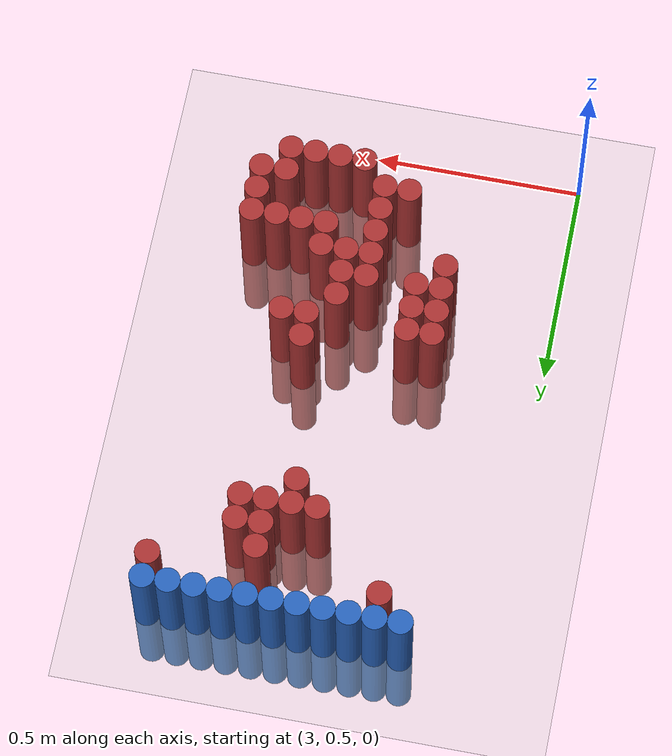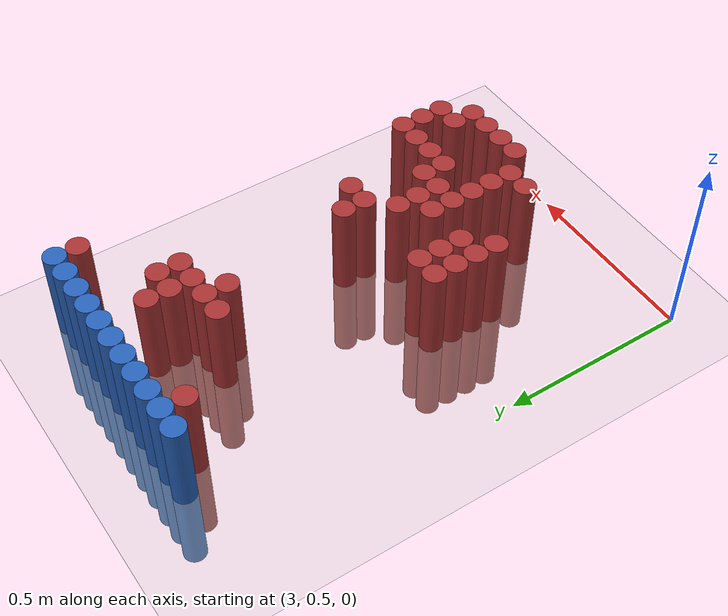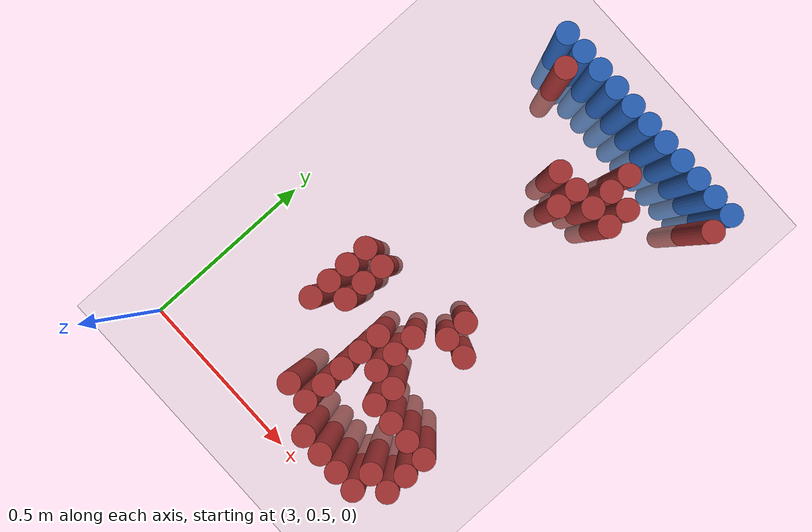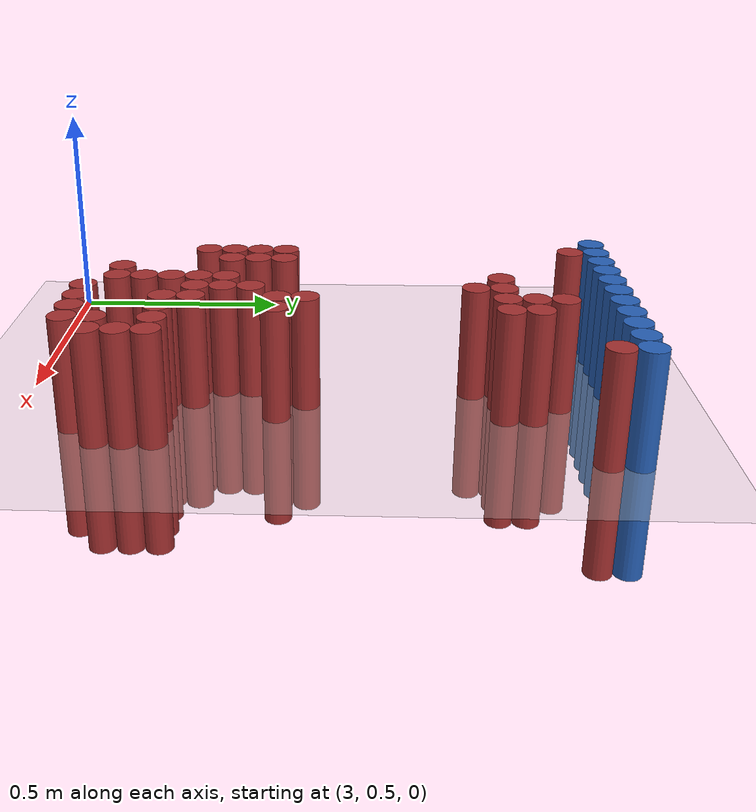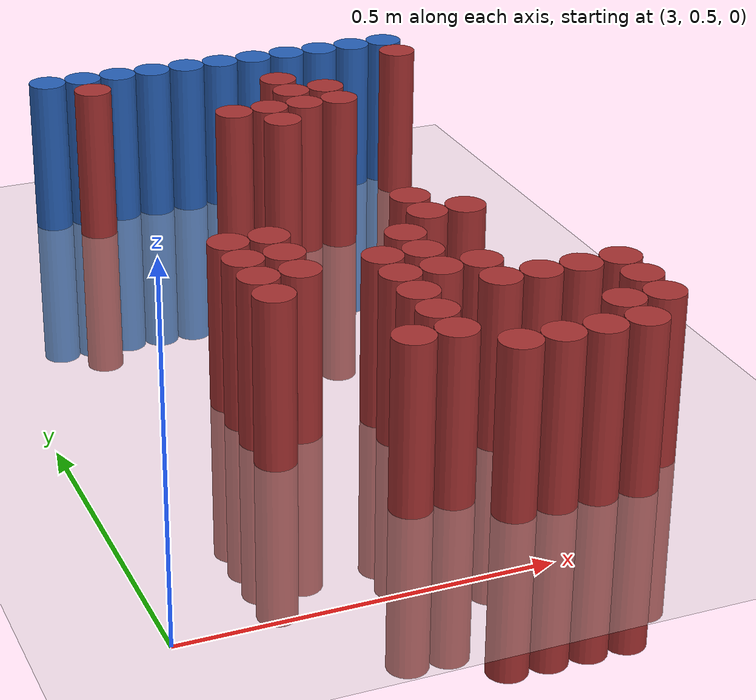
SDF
<sdf version="1.6">
 <world name="default">
  <model name="ground_plane">
   <static>1</static>
   <link name="link">
    <collision name="collision">
     <geometry><plane><normal>0 0 1</normal><size>100 100</size></plane></geometry>
     <surface><friction><ode><mu>100</mu><mu2>50</mu2></ode></friction></surface>
    </collision>
    <visual name="visual">
     <cast_shadows>0</cast_shadows>
     <geometry><plane><normal>0 0 1</normal><size>100 100</size></plane></geometry>
     <material>
      <script><uri>file://media/materials/scripts/gazebo.material</uri><name>Gazebo/Grey</name></script>
     </material>
    </visual>
   </link>
  </model>
  <model name="unit_cylinder_114">
   <static>1</static>
   <pose>3.210000 1.770000 0.000000 0.000000 0.000000 0.000000</pose>
   <link name="link">
    <inertial>
     <mass>1</mass>
     <inertia><ixx>0.145833</ixx><ixy>0</ixy><ixz>0</ixz><iyy>0.145833</iyy><iyz>0</iyz><izz>0.125</izz></inertia>
    </inertial>
    <collision name="collision">
     <geometry><cylinder><radius>0.030000</radius><length>0.5</length></cylinder></geometry>
    </collision>
    <visual name="visual">
     <geometry><cylinder><radius>0.030000</radius><length>0.5</length></cylinder></geometry>
     <material>
      <ambient>0.152000 0.379000 0.720000 1</ambient>
      <diffuse>0.152000 0.379000 0.720000 1</diffuse>
     </material>
     <material>
      <script><name>Gazebo/Grey</name><uri>file://media/materials/scripts/gazebo.material</uri></script>
     </material>
    </visual>
   </link>
  </model>
  <model name="unit_cylinder_115">
   <static>1</static>
   <pose>3.270000 1.770000 0.000000 0.000000 0.000000 0.000000</pose>
   <link name="link">
    <inertial>
     <mass>1</mass>
     <inertia><ixx>0.145833</ixx><ixy>0</ixy><ixz>0</ixz><iyy>0.145833</iyy><iyz>0</iyz><izz>0.125</izz></inertia>
    </inertial>
    <collision name="collision">
     <geometry><cylinder><radius>0.030000</radius><length>0.5</length></cylinder></geometry>
    </collision>
    <visual name="visual">
     <geometry><cylinder><radius>0.030000</radius><length>0.5</length></cylinder></geometry>
     <material>
      <ambient>0.152000 0.379000 0.720000 1</ambient>
      <diffuse>0.152000 0.379000 0.720000 1</diffuse>
     </material>
     <material>
      <script><name>Gazebo/Grey</name><uri>file://media/materials/scripts/gazebo.material</uri></script>
     </material>
    </visual>
   </link>
  </model>
  <model name="unit_cylinder_116">
   <static>1</static>
   <pose>3.330000 1.770000 0.000000 0.000000 0.000000 0.000000</pose>
   <link name="link">
    <inertial>
     <mass>1</mass>
     <inertia><ixx>0.145833</ixx><ixy>0</ixy><ixz>0</ixz><iyy>0.145833</iyy><iyz>0</iyz><izz>0.125</izz></inertia>
    </inertial>
    <collision name="collision">
     <geometry><cylinder><radius>0.030000</radius><length>0.5</length></cylinder></geometry>
    </collision>
    <visual name="visual">
     <geometry><cylinder><radius>0.030000</radius><length>0.5</length></cylinder></geometry>
     <material>
      <ambient>0.152000 0.379000 0.720000 1</ambient>
      <diffuse>0.152000 0.379000 0.720000 1</diffuse>
     </material>
     <material>
      <script><name>Gazebo/Grey</name><uri>file://media/materials/scripts/gazebo.material</uri></script>
     </material>
    </visual>
   </link>
  </model>
  <model name="unit_cylinder_117">
   <static>1</static>
   <pose>3.390000 1.770000 0.000000 0.000000 0.000000 0.000000</pose>
   <link name="link">
    <inertial>
     <mass>1</mass>
     <inertia><ixx>0.145833</ixx><ixy>0</ixy><ixz>0</ixz><iyy>0.145833</iyy><iyz>0</iyz><izz>0.125</izz></inertia>
    </inertial>
    <collision name="collision">
     <geometry><cylinder><radius>0.030000</radius><length>0.5</length></cylinder></geometry>
    </collision>
    <visual name="visual">
     <geometry><cylinder><radius>0.030000</radius><length>0.5</length></cylinder></geometry>
     <material>
      <ambient>0.152000 0.379000 0.720000 1</ambient>
      <diffuse>0.152000 0.379000 0.720000 1</diffuse>
     </material>
     <material>
      <script><name>Gazebo/Grey</name><uri>file://media/materials/scripts/gazebo.material</uri></script>
     </material>
    </visual>
   </link>
  </model>
  <model name="unit_cylinder_118">
   <static>1</static>
   <pose>3.450000 1.770000 0.000000 0.000000 0.000000 0.000000</pose>
   <link name="link">
    <inertial>
     <mass>1</mass>
     <inertia><ixx>0.145833</ixx><ixy>0</ixy><ixz>0</ixz><iyy>0.145833</iyy><iyz>0</iyz><izz>0.125</izz></inertia>
    </inertial>
    <collision name="collision">
     <geometry><cylinder><radius>0.030000</radius><length>0.5</length></cylinder></geometry>
    </collision>
    <visual name="visual">
     <geometry><cylinder><radius>0.030000</radius><length>0.5</length></cylinder></geometry>
     <material>
      <ambient>0.152000 0.379000 0.720000 1</ambient>
      <diffuse>0.152000 0.379000 0.720000 1</diffuse>
     </material>
     <material>
      <script><name>Gazebo/Grey</name><uri>file://media/materials/scripts/gazebo.material</uri></script>
     </material>
    </visual>
   </link>
  </model>
  <model name="unit_cylinder_119">
   <static>1</static>
   <pose>3.510000 1.770000 0.000000 0.000000 0.000000 0.000000</pose>
   <link name="link">
    <inertial>
     <mass>1</mass>
     <inertia><ixx>0.145833</ixx><ixy>0</ixy><ixz>0</ixz><iyy>0.145833</iyy><iyz>0</iyz><izz>0.125</izz></inertia>
    </inertial>
    <collision name="collision">
     <geometry><cylinder><radius>0.030000</radius><length>0.5</length></cylinder></geometry>
    </collision>
    <visual name="visual">
     <geometry><cylinder><radius>0.030000</radius><length>0.5</length></cylinder></geometry>
     <material>
      <ambient>0.152000 0.379000 0.720000 1</ambient>
      <diffuse>0.152000 0.379000 0.720000 1</diffuse>
     </material>
     <material>
      <script><name>Gazebo/Grey</name><uri>file://media/materials/scripts/gazebo.material</uri></script>
     </material>
    </visual>
   </link>
  </model>
  <model name="unit_cylinder_120">
   <static>1</static>
   <pose>3.570000 1.770000 0.000000 0.000000 0.000000 0.000000</pose>
   <link name="link">
    <inertial>
     <mass>1</mass>
     <inertia><ixx>0.145833</ixx><ixy>0</ixy><ixz>0</ixz><iyy>0.145833</iyy><iyz>0</iyz><izz>0.125</izz></inertia>
    </inertial>
    <collision name="collision">
     <geometry><cylinder><radius>0.030000</radius><length>0.5</length></cylinder></geometry>
    </collision>
    <visual name="visual">
     <geometry><cylinder><radius>0.030000</radius><length>0.5</length></cylinder></geometry>
     <material>
      <ambient>0.152000 0.379000 0.720000 1</ambient>
      <diffuse>0.152000 0.379000 0.720000 1</diffuse>
     </material>
     <material>
      <script><name>Gazebo/Grey</name><uri>file://media/materials/scripts/gazebo.material</uri></script>
     </material>
    </visual>
   </link>
  </model>
  <model name="unit_cylinder_121">
   <static>1</static>
   <pose>3.630000 1.770000 0.000000 0.000000 0.000000 0.000000</pose>
   <link name="link">
    <inertial>
     <mass>1</mass>
     <inertia><ixx>0.145833</ixx><ixy>0</ixy><ixz>0</ixz><iyy>0.145833</iyy><iyz>0</iyz><izz>0.125</izz></inertia>
    </inertial>
    <collision name="collision">
     <geometry><cylinder><radius>0.030000</radius><length>0.5</length></cylinder></geometry>
    </collision>
    <visual name="visual">
     <geometry><cylinder><radius>0.030000</radius><length>0.5</length></cylinder></geometry>
     <material>
      <ambient>0.152000 0.379000 0.720000 1</ambient>
      <diffuse>0.152000 0.379000 0.720000 1</diffuse>
     </material>
     <material>
      <script><name>Gazebo/Grey</name><uri>file://media/materials/scripts/gazebo.material</uri></script>
     </material>
    </visual>
   </link>
  </model>
  <model name="unit_cylinder_122">
   <static>1</static>
   <pose>3.690000 1.770000 0.000000 0.000000 0.000000 0.000000</pose>
   <link name="link">
    <inertial>
     <mass>1</mass>
     <inertia><ixx>0.145833</ixx><ixy>0</ixy><ixz>0</ixz><iyy>0.145833</iyy><iyz>0</iyz><izz>0.125</izz></inertia>
    </inertial>
    <collision name="collision">
     <geometry><cylinder><radius>0.030000</radius><length>0.5</length></cylinder></geometry>
    </collision>
    <visual name="visual">
     <geometry><cylinder><radius>0.030000</radius><length>0.5</length></cylinder></geometry>
     <material>
      <ambient>0.152000 0.379000 0.720000 1</ambient>
      <diffuse>0.152000 0.379000 0.720000 1</diffuse>
     </material>
     <material>
      <script><name>Gazebo/Grey</name><uri>file://media/materials/scripts/gazebo.material</uri></script>
     </material>
    </visual>
   </link>
  </model>
  <model name="unit_cylinder_123">
   <static>1</static>
   <pose>3.750000 1.770000 0.000000 0.000000 0.000000 0.000000</pose>
   <link name="link">
    <inertial>
     <mass>1</mass>
     <inertia><ixx>0.145833</ixx><ixy>0</ixy><ixz>0</ixz><iyy>0.145833</iyy><iyz>0</iyz><izz>0.125</izz></inertia>
    </inertial>
    <collision name="collision">
     <geometry><cylinder><radius>0.030000</radius><length>0.5</length></cylinder></geometry>
    </collision>
    <visual name="visual">
     <geometry><cylinder><radius>0.030000</radius><length>0.5</length></cylinder></geometry>
     <material>
      <ambient>0.152000 0.379000 0.720000 1</ambient>
      <diffuse>0.152000 0.379000 0.720000 1</diffuse>
     </material>
     <material>
      <script><name>Gazebo/Grey</name><uri>file://media/materials/scripts/gazebo.material</uri></script>
     </material>
    </visual>
   </link>
  </model>
  <model name="unit_cylinder_124">
   <static>1</static>
   <pose>3.810000 1.770000 0.000000 0.000000 0.000000 0.000000</pose>
   <link name="link">
    <inertial>
     <mass>1</mass>
     <inertia><ixx>0.145833</ixx><ixy>0</ixy><ixz>0</ixz><iyy>0.145833</iyy><iyz>0</iyz><izz>0.125</izz></inertia>
    </inertial>
    <collision name="collision">
     <geometry><cylinder><radius>0.030000</radius><length>0.5</length></cylinder></geometry>
    </collision>
    <visual name="visual">
     <geometry><cylinder><radius>0.030000</radius><length>0.5</length></cylinder></geometry>
     <material>
      <ambient>0.152000 0.379000 0.720000 1</ambient>
      <diffuse>0.152000 0.379000 0.720000 1</diffuse>
     </material>
     <material>
      <script><name>Gazebo/Grey</name><uri>file://media/materials/scripts/gazebo.material</uri></script>
     </material>
    </visual>
   </link>
  </model>
  <model name="unit_cylinder_142">
   <static>1</static>
   <pose>3.270000 1.710000 0.000000 0.000000 0.000000 0.000000</pose>
   <link name="link">
    <inertial>
     <mass>1</mass>
     <inertia><ixx>0.145833</ixx><ixy>0</ixy><ixz>0</ixz><iyy>0.145833</iyy><iyz>0</iyz><izz>0.125</izz></inertia>
    </inertial>
    <collision name="collision">
     <geometry><cylinder><radius>0.030000</radius><length>0.5</length></cylinder></geometry>
    </collision>
    <visual name="visual">
     <geometry><cylinder><radius>0.030000</radius><length>0.5</length></cylinder></geometry>
     <material>
      <ambient>0.648000 0.192000 0.192000 1</ambient>
      <diffuse>0.648000 0.192000 0.192000 1</diffuse>
     </material>
     <material>
      <script><name>Gazebo/Grey</name><uri>file://media/materials/scripts/gazebo.material</uri></script>
     </material>
    </visual>
   </link>
  </model>
  <model name="unit_cylinder_143">
   <static>1</static>
   <pose>3.810000 1.710000 0.000000 0.000000 0.000000 0.000000</pose>
   <link name="link">
    <inertial>
     <mass>1</mass>
     <inertia><ixx>0.145833</ixx><ixy>0</ixy><ixz>0</ixz><iyy>0.145833</iyy><iyz>0</iyz><izz>0.125</izz></inertia>
    </inertial>
    <collision name="collision">
     <geometry><cylinder><radius>0.030000</radius><length>0.5</length></cylinder></geometry>
    </collision>
    <visual name="visual">
     <geometry><cylinder><radius>0.030000</radius><length>0.5</length></cylinder></geometry>
     <material>
      <ambient>0.648000 0.192000 0.192000 1</ambient>
      <diffuse>0.648000 0.192000 0.192000 1</diffuse>
     </material>
     <material>
      <script><name>Gazebo/Grey</name><uri>file://media/materials/scripts/gazebo.material</uri></script>
     </material>
    </visual>
   </link>
  </model>
  <model name="unit_cylinder_146">
   <static>1</static>
   <pose>3.570000 1.650000 0.000000 0.000000 0.000000 0.000000</pose>
   <link name="link">
    <inertial>
     <mass>1</mass>
     <inertia><ixx>0.145833</ixx><ixy>0</ixy><ixz>0</ixz><iyy>0.145833</iyy><iyz>0</iyz><izz>0.125</izz></inertia>
    </inertial>
    <collision name="collision">
     <geometry><cylinder><radius>0.030000</radius><length>0.5</length></cylinder></geometry>
    </collision>
    <visual name="visual">
     <geometry><cylinder><radius>0.030000</radius><length>0.5</length></cylinder></geometry>
     <material>
      <ambient>0.648000 0.192000 0.192000 1</ambient>
      <diffuse>0.648000 0.192000 0.192000 1</diffuse>
     </material>
     <material>
      <script><name>Gazebo/Grey</name><uri>file://media/materials/scripts/gazebo.material</uri></script>
     </material>
    </visual>
   </link>
  </model>
  <model name="unit_cylinder_148">
   <static>1</static>
   <pose>3.570000 1.590000 0.000000 0.000000 0.000000 0.000000</pose>
   <link name="link">
    <inertial>
     <mass>1</mass>
     <inertia><ixx>0.145833</ixx><ixy>0</ixy><ixz>0</ixz><iyy>0.145833</iyy><iyz>0</iyz><izz>0.125</izz></inertia>
    </inertial>
    <collision name="collision">
     <geometry><cylinder><radius>0.030000</radius><length>0.5</length></cylinder></geometry>
    </collision>
    <visual name="visual">
     <geometry><cylinder><radius>0.030000</radius><length>0.5</length></cylinder></geometry>
     <material>
      <ambient>0.648000 0.192000 0.192000 1</ambient>
      <diffuse>0.648000 0.192000 0.192000 1</diffuse>
     </material>
     <material>
      <script><name>Gazebo/Grey</name><uri>file://media/materials/scripts/gazebo.material</uri></script>
     </material>
    </visual>
   </link>
  </model>
  <model name="unit_cylinder_149">
   <static>1</static>
   <pose>3.630000 1.590000 0.000000 0.000000 0.000000 0.000000</pose>
   <link name="link">
    <inertial>
     <mass>1</mass>
     <inertia><ixx>0.145833</ixx><ixy>0</ixy><ixz>0</ixz><iyy>0.145833</iyy><iyz>0</iyz><izz>0.125</izz></inertia>
    </inertial>
    <collision name="collision">
     <geometry><cylinder><radius>0.030000</radius><length>0.5</length></cylinder></geometry>
    </collision>
    <visual name="visual">
     <geometry><cylinder><radius>0.030000</radius><length>0.5</length></cylinder></geometry>
     <material>
      <ambient>0.648000 0.192000 0.192000 1</ambient>
      <diffuse>0.648000 0.192000 0.192000 1</diffuse>
     </material>
     <material>
      <script><name>Gazebo/Grey</name><uri>file://media/materials/scripts/gazebo.material</uri></script>
     </material>
    </visual>
   </link>
  </model>
  <model name="unit_cylinder_153">
   <static>1</static>
   <pose>3.450000 1.530000 0.000000 0.000000 0.000000 0.000000</pose>
   <link name="link">
    <inertial>
     <mass>1</mass>
     <inertia><ixx>0.145833</ixx><ixy>0</ixy><ixz>0</ixz><iyy>0.145833</iyy><iyz>0</iyz><izz>0.125</izz></inertia>
    </inertial>
    <collision name="collision">
     <geometry><cylinder><radius>0.030000</radius><length>0.5</length></cylinder></geometry>
    </collision>
    <visual name="visual">
     <geometry><cylinder><radius>0.030000</radius><length>0.5</length></cylinder></geometry>
     <material>
      <ambient>0.648000 0.192000 0.192000 1</ambient>
      <diffuse>0.648000 0.192000 0.192000 1</diffuse>
     </material>
     <material>
      <script><name>Gazebo/Grey</name><uri>file://media/materials/scripts/gazebo.material</uri></script>
     </material>
    </visual>
   </link>
  </model>
  <model name="unit_cylinder_154">
   <static>1</static>
   <pose>3.510000 1.530000 0.000000 0.000000 0.000000 0.000000</pose>
   <link name="link">
    <inertial>
     <mass>1</mass>
     <inertia><ixx>0.145833</ixx><ixy>0</ixy><ixz>0</ixz><iyy>0.145833</iyy><iyz>0</iyz><izz>0.125</izz></inertia>
    </inertial>
    <collision name="collision">
     <geometry><cylinder><radius>0.030000</radius><length>0.5</length></cylinder></geometry>
    </collision>
    <visual name="visual">
     <geometry><cylinder><radius>0.030000</radius><length>0.5</length></cylinder></geometry>
     <material>
      <ambient>0.648000 0.192000 0.192000 1</ambient>
      <diffuse>0.648000 0.192000 0.192000 1</diffuse>
     </material>
     <material>
      <script><name>Gazebo/Grey</name><uri>file://media/materials/scripts/gazebo.material</uri></script>
     </material>
    </visual>
   </link>
  </model>
  <model name="unit_cylinder_155">
   <static>1</static>
   <pose>3.570000 1.530000 0.000000 0.000000 0.000000 0.000000</pose>
   <link name="link">
    <inertial>
     <mass>1</mass>
     <inertia><ixx>0.145833</ixx><ixy>0</ixy><ixz>0</ixz><iyy>0.145833</iyy><iyz>0</iyz><izz>0.125</izz></inertia>
    </inertial>
    <collision name="collision">
     <geometry><cylinder><radius>0.030000</radius><length>0.5</length></cylinder></geometry>
    </collision>
    <visual name="visual">
     <geometry><cylinder><radius>0.030000</radius><length>0.5</length></cylinder></geometry>
     <material>
      <ambient>0.648000 0.192000 0.192000 1</ambient>
      <diffuse>0.648000 0.192000 0.192000 1</diffuse>
     </material>
     <material>
      <script><name>Gazebo/Grey</name><uri>file://media/materials/scripts/gazebo.material</uri></script>
     </material>
    </visual>
   </link>
  </model>
  <model name="unit_cylinder_156">
   <static>1</static>
   <pose>3.630000 1.530000 0.000000 0.000000 0.000000 0.000000</pose>
   <link name="link">
    <inertial>
     <mass>1</mass>
     <inertia><ixx>0.145833</ixx><ixy>0</ixy><ixz>0</ixz><iyy>0.145833</iyy><iyz>0</iyz><izz>0.125</izz></inertia>
    </inertial>
    <collision name="collision">
     <geometry><cylinder><radius>0.030000</radius><length>0.5</length></cylinder></geometry>
    </collision>
    <visual name="visual">
     <geometry><cylinder><radius>0.030000</radius><length>0.5</length></cylinder></geometry>
     <material>
      <ambient>0.648000 0.192000 0.192000 1</ambient>
      <diffuse>0.648000 0.192000 0.192000 1</diffuse>
     </material>
     <material>
      <script><name>Gazebo/Grey</name><uri>file://media/materials/scripts/gazebo.material</uri></script>
     </material>
    </visual>
   </link>
  </model>
  <model name="unit_cylinder_157">
   <static>1</static>
   <pose>3.510000 1.470000 0.000000 0.000000 0.000000 0.000000</pose>
   <link name="link">
    <inertial>
     <mass>1</mass>
     <inertia><ixx>0.145833</ixx><ixy>0</ixy><ixz>0</ixz><iyy>0.145833</iyy><iyz>0</iyz><izz>0.125</izz></inertia>
    </inertial>
    <collision name="collision">
     <geometry><cylinder><radius>0.030000</radius><length>0.5</length></cylinder></geometry>
    </collision>
    <visual name="visual">
     <geometry><cylinder><radius>0.030000</radius><length>0.5</length></cylinder></geometry>
     <material>
      <ambient>0.648000 0.192000 0.192000 1</ambient>
      <diffuse>0.648000 0.192000 0.192000 1</diffuse>
     </material>
     <material>
      <script><name>Gazebo/Grey</name><uri>file://media/materials/scripts/gazebo.material</uri></script>
     </material>
    </visual>
   </link>
  </model>
  <model name="unit_cylinder_170">
   <static>1</static>
   <pose>3.570000 1.110000 0.000000 0.000000 0.000000 0.000000</pose>
   <link name="link">
    <inertial>
     <mass>1</mass>
     <inertia><ixx>0.145833</ixx><ixy>0</ixy><ixz>0</ixz><iyy>0.145833</iyy><iyz>0</iyz><izz>0.125</izz></inertia>
    </inertial>
    <collision name="collision">
     <geometry><cylinder><radius>0.030000</radius><length>0.5</length></cylinder></geometry>
    </collision>
    <visual name="visual">
     <geometry><cylinder><radius>0.030000</radius><length>0.5</length></cylinder></geometry>
     <material>
      <ambient>0.648000 0.192000 0.192000 1</ambient>
      <diffuse>0.648000 0.192000 0.192000 1</diffuse>
     </material>
     <material>
      <script><name>Gazebo/Grey</name><uri>file://media/materials/scripts/gazebo.material</uri></script>
     </material>
    </visual>
   </link>
  </model>
  <model name="unit_cylinder_172">
   <static>1</static>
   <pose>3.270000 1.050000 0.000000 0.000000 0.000000 0.000000</pose>
   <link name="link">
    <inertial>
     <mass>1</mass>
     <inertia><ixx>0.145833</ixx><ixy>0</ixy><ixz>0</ixz><iyy>0.145833</iyy><iyz>0</iyz><izz>0.125</izz></inertia>
    </inertial>
    <collision name="collision">
     <geometry><cylinder><radius>0.030000</radius><length>0.5</length></cylinder></geometry>
    </collision>
    <visual name="visual">
     <geometry><cylinder><radius>0.030000</radius><length>0.5</length></cylinder></geometry>
     <material>
      <ambient>0.648000 0.192000 0.192000 1</ambient>
      <diffuse>0.648000 0.192000 0.192000 1</diffuse>
     </material>
     <material>
      <script><name>Gazebo/Grey</name><uri>file://media/materials/scripts/gazebo.material</uri></script>
     </material>
    </visual>
   </link>
  </model>
  <model name="unit_cylinder_173">
   <static>1</static>
   <pose>3.330000 1.050000 0.000000 0.000000 0.000000 0.000000</pose>
   <link name="link">
    <inertial>
     <mass>1</mass>
     <inertia><ixx>0.145833</ixx><ixy>0</ixy><ixz>0</ixz><iyy>0.145833</iyy><iyz>0</iyz><izz>0.125</izz></inertia>
    </inertial>
    <collision name="collision">
     <geometry><cylinder><radius>0.030000</radius><length>0.5</length></cylinder></geometry>
    </collision>
    <visual name="visual">
     <geometry><cylinder><radius>0.030000</radius><length>0.5</length></cylinder></geometry>
     <material>
      <ambient>0.648000 0.192000 0.192000 1</ambient>
      <diffuse>0.648000 0.192000 0.192000 1</diffuse>
     </material>
     <material>
      <script><name>Gazebo/Grey</name><uri>file://media/materials/scripts/gazebo.material</uri></script>
     </material>
    </visual>
   </link>
  </model>
  <model name="unit_cylinder_174">
   <static>1</static>
   <pose>3.570000 1.050000 0.000000 0.000000 0.000000 0.000000</pose>
   <link name="link">
    <inertial>
     <mass>1</mass>
     <inertia><ixx>0.145833</ixx><ixy>0</ixy><ixz>0</ixz><iyy>0.145833</iyy><iyz>0</iyz><izz>0.125</izz></inertia>
    </inertial>
    <collision name="collision">
     <geometry><cylinder><radius>0.030000</radius><length>0.5</length></cylinder></geometry>
    </collision>
    <visual name="visual">
     <geometry><cylinder><radius>0.030000</radius><length>0.5</length></cylinder></geometry>
     <material>
      <ambient>0.648000 0.192000 0.192000 1</ambient>
      <diffuse>0.648000 0.192000 0.192000 1</diffuse>
     </material>
     <material>
      <script><name>Gazebo/Grey</name><uri>file://media/materials/scripts/gazebo.material</uri></script>
     </material>
    </visual>
   </link>
  </model>
  <model name="unit_cylinder_175">
   <static>1</static>
   <pose>3.630000 1.050000 0.000000 0.000000 0.000000 0.000000</pose>
   <link name="link">
    <inertial>
     <mass>1</mass>
     <inertia><ixx>0.145833</ixx><ixy>0</ixy><ixz>0</ixz><iyy>0.145833</iyy><iyz>0</iyz><izz>0.125</izz></inertia>
    </inertial>
    <collision name="collision">
     <geometry><cylinder><radius>0.030000</radius><length>0.5</length></cylinder></geometry>
    </collision>
    <visual name="visual">
     <geometry><cylinder><radius>0.030000</radius><length>0.5</length></cylinder></geometry>
     <material>
      <ambient>0.648000 0.192000 0.192000 1</ambient>
      <diffuse>0.648000 0.192000 0.192000 1</diffuse>
     </material>
     <material>
      <script><name>Gazebo/Grey</name><uri>file://media/materials/scripts/gazebo.material</uri></script>
     </material>
    </visual>
   </link>
  </model>
  <model name="unit_cylinder_177">
   <static>1</static>
   <pose>3.270000 0.990000 0.000000 0.000000 0.000000 0.000000</pose>
   <link name="link">
    <inertial>
     <mass>1</mass>
     <inertia><ixx>0.145833</ixx><ixy>0</ixy><ixz>0</ixz><iyy>0.145833</iyy><iyz>0</iyz><izz>0.125</izz></inertia>
    </inertial>
    <collision name="collision">
     <geometry><cylinder><radius>0.030000</radius><length>0.5</length></cylinder></geometry>
    </collision>
    <visual name="visual">
     <geometry><cylinder><radius>0.030000</radius><length>0.5</length></cylinder></geometry>
     <material>
      <ambient>0.648000 0.192000 0.192000 1</ambient>
      <diffuse>0.648000 0.192000 0.192000 1</diffuse>
     </material>
     <material>
      <script><name>Gazebo/Grey</name><uri>file://media/materials/scripts/gazebo.material</uri></script>
     </material>
    </visual>
   </link>
  </model>
  <model name="unit_cylinder_178">
   <static>1</static>
   <pose>3.330000 0.990000 0.000000 0.000000 0.000000 0.000000</pose>
   <link name="link">
    <inertial>
     <mass>1</mass>
     <inertia><ixx>0.145833</ixx><ixy>0</ixy><ixz>0</ixz><iyy>0.145833</iyy><iyz>0</iyz><izz>0.125</izz></inertia>
    </inertial>
    <collision name="collision">
     <geometry><cylinder><radius>0.030000</radius><length>0.5</length></cylinder></geometry>
    </collision>
    <visual name="visual">
     <geometry><cylinder><radius>0.030000</radius><length>0.5</length></cylinder></geometry>
     <material>
      <ambient>0.648000 0.192000 0.192000 1</ambient>
      <diffuse>0.648000 0.192000 0.192000 1</diffuse>
     </material>
     <material>
      <script><name>Gazebo/Grey</name><uri>file://media/materials/scripts/gazebo.material</uri></script>
     </material>
    </visual>
   </link>
  </model>
  <model name="unit_cylinder_179">
   <static>1</static>
   <pose>3.510000 0.990000 0.000000 0.000000 0.000000 0.000000</pose>
   <link name="link">
    <inertial>
     <mass>1</mass>
     <inertia><ixx>0.145833</ixx><ixy>0</ixy><ixz>0</ixz><iyy>0.145833</iyy><iyz>0</iyz><izz>0.125</izz></inertia>
    </inertial>
    <collision name="collision">
     <geometry><cylinder><radius>0.030000</radius><length>0.5</length></cylinder></geometry>
    </collision>
    <visual name="visual">
     <geometry><cylinder><radius>0.030000</radius><length>0.5</length></cylinder></geometry>
     <material>
      <ambient>0.648000 0.192000 0.192000 1</ambient>
      <diffuse>0.648000 0.192000 0.192000 1</diffuse>
     </material>
     <material>
      <script><name>Gazebo/Grey</name><uri>file://media/materials/scripts/gazebo.material</uri></script>
     </material>
    </visual>
   </link>
  </model>
  <model name="unit_cylinder_182">
   <static>1</static>
   <pose>3.270000 0.930000 0.000000 0.000000 0.000000 0.000000</pose>
   <link name="link">
    <inertial>
     <mass>1</mass>
     <inertia><ixx>0.145833</ixx><ixy>0</ixy><ixz>0</ixz><iyy>0.145833</iyy><iyz>0</iyz><izz>0.125</izz></inertia>
    </inertial>
    <collision name="collision">
     <geometry><cylinder><radius>0.030000</radius><length>0.5</length></cylinder></geometry>
    </collision>
    <visual name="visual">
     <geometry><cylinder><radius>0.030000</radius><length>0.5</length></cylinder></geometry>
     <material>
      <ambient>0.648000 0.192000 0.192000 1</ambient>
      <diffuse>0.648000 0.192000 0.192000 1</diffuse>
     </material>
     <material>
      <script><name>Gazebo/Grey</name><uri>file://media/materials/scripts/gazebo.material</uri></script>
     </material>
    </visual>
   </link>
  </model>
  <model name="unit_cylinder_183">
   <static>1</static>
   <pose>3.330000 0.930000 0.000000 0.000000 0.000000 0.000000</pose>
   <link name="link">
    <inertial>
     <mass>1</mass>
     <inertia><ixx>0.145833</ixx><ixy>0</ixy><ixz>0</ixz><iyy>0.145833</iyy><iyz>0</iyz><izz>0.125</izz></inertia>
    </inertial>
    <collision name="collision">
     <geometry><cylinder><radius>0.030000</radius><length>0.5</length></cylinder></geometry>
    </collision>
    <visual name="visual">
     <geometry><cylinder><radius>0.030000</radius><length>0.5</length></cylinder></geometry>
     <material>
      <ambient>0.648000 0.192000 0.192000 1</ambient>
      <diffuse>0.648000 0.192000 0.192000 1</diffuse>
     </material>
     <material>
      <script><name>Gazebo/Grey</name><uri>file://media/materials/scripts/gazebo.material</uri></script>
     </material>
    </visual>
   </link>
  </model>
  <model name="unit_cylinder_184">
   <static>1</static>
   <pose>3.450000 0.930000 0.000000 0.000000 0.000000 0.000000</pose>
   <link name="link">
    <inertial>
     <mass>1</mass>
     <inertia><ixx>0.145833</ixx><ixy>0</ixy><ixz>0</ixz><iyy>0.145833</iyy><iyz>0</iyz><izz>0.125</izz></inertia>
    </inertial>
    <collision name="collision">
     <geometry><cylinder><radius>0.030000</radius><length>0.5</length></cylinder></geometry>
    </collision>
    <visual name="visual">
     <geometry><cylinder><radius>0.030000</radius><length>0.5</length></cylinder></geometry>
     <material>
      <ambient>0.648000 0.192000 0.192000 1</ambient>
      <diffuse>0.648000 0.192000 0.192000 1</diffuse>
     </material>
     <material>
      <script><name>Gazebo/Grey</name><uri>file://media/materials/scripts/gazebo.material</uri></script>
     </material>
    </visual>
   </link>
  </model>
  <model name="unit_cylinder_185">
   <static>1</static>
   <pose>3.510000 0.930000 0.000000 0.000000 0.000000 0.000000</pose>
   <link name="link">
    <inertial>
     <mass>1</mass>
     <inertia><ixx>0.145833</ixx><ixy>0</ixy><ixz>0</ixz><iyy>0.145833</iyy><iyz>0</iyz><izz>0.125</izz></inertia>
    </inertial>
    <collision name="collision">
     <geometry><cylinder><radius>0.030000</radius><length>0.5</length></cylinder></geometry>
    </collision>
    <visual name="visual">
     <geometry><cylinder><radius>0.030000</radius><length>0.5</length></cylinder></geometry>
     <material>
      <ambient>0.648000 0.192000 0.192000 1</ambient>
      <diffuse>0.648000 0.192000 0.192000 1</diffuse>
     </material>
     <material>
      <script><name>Gazebo/Grey</name><uri>file://media/materials/scripts/gazebo.material</uri></script>
     </material>
    </visual>
   </link>
  </model>
  <model name="unit_cylinder_191">
   <static>1</static>
   <pose>3.270000 0.870000 0.000000 0.000000 0.000000 0.000000</pose>
   <link name="link">
    <inertial>
     <mass>1</mass>
     <inertia><ixx>0.145833</ixx><ixy>0</ixy><ixz>0</ixz><iyy>0.145833</iyy><iyz>0</iyz><izz>0.125</izz></inertia>
    </inertial>
    <collision name="collision">
     <geometry><cylinder><radius>0.030000</radius><length>0.5</length></cylinder></geometry>
    </collision>
    <visual name="visual">
     <geometry><cylinder><radius>0.030000</radius><length>0.5</length></cylinder></geometry>
     <material>
      <ambient>0.648000 0.192000 0.192000 1</ambient>
      <diffuse>0.648000 0.192000 0.192000 1</diffuse>
     </material>
     <material>
      <script><name>Gazebo/Grey</name><uri>file://media/materials/scripts/gazebo.material</uri></script>
     </material>
    </visual>
   </link>
  </model>
  <model name="unit_cylinder_192">
   <static>1</static>
   <pose>3.450000 0.870000 0.000000 0.000000 0.000000 0.000000</pose>
   <link name="link">
    <inertial>
     <mass>1</mass>
     <inertia><ixx>0.145833</ixx><ixy>0</ixy><ixz>0</ixz><iyy>0.145833</iyy><iyz>0</iyz><izz>0.125</izz></inertia>
    </inertial>
    <collision name="collision">
     <geometry><cylinder><radius>0.030000</radius><length>0.5</length></cylinder></geometry>
    </collision>
    <visual name="visual">
     <geometry><cylinder><radius>0.030000</radius><length>0.5</length></cylinder></geometry>
     <material>
      <ambient>0.648000 0.192000 0.192000 1</ambient>
      <diffuse>0.648000 0.192000 0.192000 1</diffuse>
     </material>
     <material>
      <script><name>Gazebo/Grey</name><uri>file://media/materials/scripts/gazebo.material</uri></script>
     </material>
    </visual>
   </link>
  </model>
  <model name="unit_cylinder_193">
   <static>1</static>
   <pose>3.510000 0.870000 0.000000 0.000000 0.000000 0.000000</pose>
   <link name="link">
    <inertial>
     <mass>1</mass>
     <inertia><ixx>0.145833</ixx><ixy>0</ixy><ixz>0</ixz><iyy>0.145833</iyy><iyz>0</iyz><izz>0.125</izz></inertia>
    </inertial>
    <collision name="collision">
     <geometry><cylinder><radius>0.030000</radius><length>0.5</length></cylinder></geometry>
    </collision>
    <visual name="visual">
     <geometry><cylinder><radius>0.030000</radius><length>0.5</length></cylinder></geometry>
     <material>
      <ambient>0.648000 0.192000 0.192000 1</ambient>
      <diffuse>0.648000 0.192000 0.192000 1</diffuse>
     </material>
     <material>
      <script><name>Gazebo/Grey</name><uri>file://media/materials/scripts/gazebo.material</uri></script>
     </material>
    </visual>
   </link>
  </model>
  <model name="unit_cylinder_194">
   <static>1</static>
   <pose>3.570000 0.870000 0.000000 0.000000 0.000000 0.000000</pose>
   <link name="link">
    <inertial>
     <mass>1</mass>
     <inertia><ixx>0.145833</ixx><ixy>0</ixy><ixz>0</ixz><iyy>0.145833</iyy><iyz>0</iyz><izz>0.125</izz></inertia>
    </inertial>
    <collision name="collision">
     <geometry><cylinder><radius>0.030000</radius><length>0.5</length></cylinder></geometry>
    </collision>
    <visual name="visual">
     <geometry><cylinder><radius>0.030000</radius><length>0.5</length></cylinder></geometry>
     <material>
      <ambient>0.648000 0.192000 0.192000 1</ambient>
      <diffuse>0.648000 0.192000 0.192000 1</diffuse>
     </material>
     <material>
      <script><name>Gazebo/Grey</name><uri>file://media/materials/scripts/gazebo.material</uri></script>
     </material>
    </visual>
   </link>
  </model>
  <model name="unit_cylinder_197">
   <static>1</static>
   <pose>3.450000 0.810000 0.000000 0.000000 0.000000 0.000000</pose>
   <link name="link">
    <inertial>
     <mass>1</mass>
     <inertia><ixx>0.145833</ixx><ixy>0</ixy><ixz>0</ixz><iyy>0.145833</iyy><iyz>0</iyz><izz>0.125</izz></inertia>
    </inertial>
    <collision name="collision">
     <geometry><cylinder><radius>0.030000</radius><length>0.5</length></cylinder></geometry>
    </collision>
    <visual name="visual">
     <geometry><cylinder><radius>0.030000</radius><length>0.5</length></cylinder></geometry>
     <material>
      <ambient>0.648000 0.192000 0.192000 1</ambient>
      <diffuse>0.648000 0.192000 0.192000 1</diffuse>
     </material>
     <material>
      <script><name>Gazebo/Grey</name><uri>file://media/materials/scripts/gazebo.material</uri></script>
     </material>
    </visual>
   </link>
  </model>
  <model name="unit_cylinder_198">
   <static>1</static>
   <pose>3.570000 0.810000 0.000000 0.000000 0.000000 0.000000</pose>
   <link name="link">
    <inertial>
     <mass>1</mass>
     <inertia><ixx>0.145833</ixx><ixy>0</ixy><ixz>0</ixz><iyy>0.145833</iyy><iyz>0</iyz><izz>0.125</izz></inertia>
    </inertial>
    <collision name="collision">
     <geometry><cylinder><radius>0.030000</radius><length>0.5</length></cylinder></geometry>
    </collision>
    <visual name="visual">
     <geometry><cylinder><radius>0.030000</radius><length>0.5</length></cylinder></geometry>
     <material>
      <ambient>0.648000 0.192000 0.192000 1</ambient>
      <diffuse>0.648000 0.192000 0.192000 1</diffuse>
     </material>
     <material>
      <script><name>Gazebo/Grey</name><uri>file://media/materials/scripts/gazebo.material</uri></script>
     </material>
    </visual>
   </link>
  </model>
  <model name="unit_cylinder_199">
   <static>1</static>
   <pose>3.630000 0.810000 0.000000 0.000000 0.000000 0.000000</pose>
   <link name="link">
    <inertial>
     <mass>1</mass>
     <inertia><ixx>0.145833</ixx><ixy>0</ixy><ixz>0</ixz><iyy>0.145833</iyy><iyz>0</iyz><izz>0.125</izz></inertia>
    </inertial>
    <collision name="collision">
     <geometry><cylinder><radius>0.030000</radius><length>0.5</length></cylinder></geometry>
    </collision>
    <visual name="visual">
     <geometry><cylinder><radius>0.030000</radius><length>0.5</length></cylinder></geometry>
     <material>
      <ambient>0.648000 0.192000 0.192000 1</ambient>
      <diffuse>0.648000 0.192000 0.192000 1</diffuse>
     </material>
     <material>
      <script><name>Gazebo/Grey</name><uri>file://media/materials/scripts/gazebo.material</uri></script>
     </material>
    </visual>
   </link>
  </model>
  <model name="unit_cylinder_200">
   <static>1</static>
   <pose>3.690000 0.810000 0.000000 0.000000 0.000000 0.000000</pose>
   <link name="link">
    <inertial>
     <mass>1</mass>
     <inertia><ixx>0.145833</ixx><ixy>0</ixy><ixz>0</ixz><iyy>0.145833</iyy><iyz>0</iyz><izz>0.125</izz></inertia>
    </inertial>
    <collision name="collision">
     <geometry><cylinder><radius>0.030000</radius><length>0.5</length></cylinder></geometry>
    </collision>
    <visual name="visual">
     <geometry><cylinder><radius>0.030000</radius><length>0.5</length></cylinder></geometry>
     <material>
      <ambient>0.648000 0.192000 0.192000 1</ambient>
      <diffuse>0.648000 0.192000 0.192000 1</diffuse>
     </material>
     <material>
      <script><name>Gazebo/Grey</name><uri>file://media/materials/scripts/gazebo.material</uri></script>
     </material>
    </visual>
   </link>
  </model>
  <model name="unit_cylinder_201">
   <static>1</static>
   <pose>3.750000 0.810000 0.000000 0.000000 0.000000 0.000000</pose>
   <link name="link">
    <inertial>
     <mass>1</mass>
     <inertia><ixx>0.145833</ixx><ixy>0</ixy><ixz>0</ixz><iyy>0.145833</iyy><iyz>0</iyz><izz>0.125</izz></inertia>
    </inertial>
    <collision name="collision">
     <geometry><cylinder><radius>0.030000</radius><length>0.5</length></cylinder></geometry>
    </collision>
    <visual name="visual">
     <geometry><cylinder><radius>0.030000</radius><length>0.5</length></cylinder></geometry>
     <material>
      <ambient>0.648000 0.192000 0.192000 1</ambient>
      <diffuse>0.648000 0.192000 0.192000 1</diffuse>
     </material>
     <material>
      <script><name>Gazebo/Grey</name><uri>file://media/materials/scripts/gazebo.material</uri></script>
     </material>
    </visual>
   </link>
  </model>
  <model name="unit_cylinder_209">
   <static>1</static>
   <pose>3.450000 0.750000 0.000000 0.000000 0.000000 0.000000</pose>
   <link name="link">
    <inertial>
     <mass>1</mass>
     <inertia><ixx>0.145833</ixx><ixy>0</ixy><ixz>0</ixz><iyy>0.145833</iyy><iyz>0</iyz><izz>0.125</izz></inertia>
    </inertial>
    <collision name="collision">
     <geometry><cylinder><radius>0.030000</radius><length>0.5</length></cylinder></geometry>
    </collision>
    <visual name="visual">
     <geometry><cylinder><radius>0.030000</radius><length>0.5</length></cylinder></geometry>
     <material>
      <ambient>0.648000 0.192000 0.192000 1</ambient>
      <diffuse>0.648000 0.192000 0.192000 1</diffuse>
     </material>
     <material>
      <script><name>Gazebo/Grey</name><uri>file://media/materials/scripts/gazebo.material</uri></script>
     </material>
    </visual>
   </link>
  </model>
  <model name="unit_cylinder_210">
   <static>1</static>
   <pose>3.750000 0.750000 0.000000 0.000000 0.000000 0.000000</pose>
   <link name="link">
    <inertial>
     <mass>1</mass>
     <inertia><ixx>0.145833</ixx><ixy>0</ixy><ixz>0</ixz><iyy>0.145833</iyy><iyz>0</iyz><izz>0.125</izz></inertia>
    </inertial>
    <collision name="collision">
     <geometry><cylinder><radius>0.030000</radius><length>0.5</length></cylinder></geometry>
    </collision>
    <visual name="visual">
     <geometry><cylinder><radius>0.030000</radius><length>0.5</length></cylinder></geometry>
     <material>
      <ambient>0.648000 0.192000 0.192000 1</ambient>
      <diffuse>0.648000 0.192000 0.192000 1</diffuse>
     </material>
     <material>
      <script><name>Gazebo/Grey</name><uri>file://media/materials/scripts/gazebo.material</uri></script>
     </material>
    </visual>
   </link>
  </model>
  <model name="unit_cylinder_220">
   <static>1</static>
   <pose>3.390000 0.690000 0.000000 0.000000 0.000000 0.000000</pose>
   <link name="link">
    <inertial>
     <mass>1</mass>
     <inertia><ixx>0.145833</ixx><ixy>0</ixy><ixz>0</ixz><iyy>0.145833</iyy><iyz>0</iyz><izz>0.125</izz></inertia>
    </inertial>
    <collision name="collision">
     <geometry><cylinder><radius>0.030000</radius><length>0.5</length></cylinder></geometry>
    </collision>
    <visual name="visual">
     <geometry><cylinder><radius>0.030000</radius><length>0.5</length></cylinder></geometry>
     <material>
      <ambient>0.648000 0.192000 0.192000 1</ambient>
      <diffuse>0.648000 0.192000 0.192000 1</diffuse>
     </material>
     <material>
      <script><name>Gazebo/Grey</name><uri>file://media/materials/scripts/gazebo.material</uri></script>
     </material>
    </visual>
   </link>
  </model>
  <model name="unit_cylinder_221">
   <static>1</static>
   <pose>3.450000 0.690000 0.000000 0.000000 0.000000 0.000000</pose>
   <link name="link">
    <inertial>
     <mass>1</mass>
     <inertia><ixx>0.145833</ixx><ixy>0</ixy><ixz>0</ixz><iyy>0.145833</iyy><iyz>0</iyz><izz>0.125</izz></inertia>
    </inertial>
    <collision name="collision">
     <geometry><cylinder><radius>0.030000</radius><length>0.5</length></cylinder></geometry>
    </collision>
    <visual name="visual">
     <geometry><cylinder><radius>0.030000</radius><length>0.5</length></cylinder></geometry>
     <material>
      <ambient>0.648000 0.192000 0.192000 1</ambient>
      <diffuse>0.648000 0.192000 0.192000 1</diffuse>
     </material>
     <material>
      <script><name>Gazebo/Grey</name><uri>file://media/materials/scripts/gazebo.material</uri></script>
     </material>
    </visual>
   </link>
  </model>
  <model name="unit_cylinder_222">
   <static>1</static>
   <pose>3.690000 0.690000 0.000000 0.000000 0.000000 0.000000</pose>
   <link name="link">
    <inertial>
     <mass>1</mass>
     <inertia><ixx>0.145833</ixx><ixy>0</ixy><ixz>0</ixz><iyy>0.145833</iyy><iyz>0</iyz><izz>0.125</izz></inertia>
    </inertial>
    <collision name="collision">
     <geometry><cylinder><radius>0.030000</radius><length>0.5</length></cylinder></geometry>
    </collision>
    <visual name="visual">
     <geometry><cylinder><radius>0.030000</radius><length>0.5</length></cylinder></geometry>
     <material>
      <ambient>0.648000 0.192000 0.192000 1</ambient>
      <diffuse>0.648000 0.192000 0.192000 1</diffuse>
     </material>
     <material>
      <script><name>Gazebo/Grey</name><uri>file://media/materials/scripts/gazebo.material</uri></script>
     </material>
    </visual>
   </link>
  </model>
  <model name="unit_cylinder_223">
   <static>1</static>
   <pose>3.750000 0.690000 0.000000 0.000000 0.000000 0.000000</pose>
   <link name="link">
    <inertial>
     <mass>1</mass>
     <inertia><ixx>0.145833</ixx><ixy>0</ixy><ixz>0</ixz><iyy>0.145833</iyy><iyz>0</iyz><izz>0.125</izz></inertia>
    </inertial>
    <collision name="collision">
     <geometry><cylinder><radius>0.030000</radius><length>0.5</length></cylinder></geometry>
    </collision>
    <visual name="visual">
     <geometry><cylinder><radius>0.030000</radius><length>0.5</length></cylinder></geometry>
     <material>
      <ambient>0.648000 0.192000 0.192000 1</ambient>
      <diffuse>0.648000 0.192000 0.192000 1</diffuse>
     </material>
     <material>
      <script><name>Gazebo/Grey</name><uri>file://media/materials/scripts/gazebo.material</uri></script>
     </material>
    </visual>
   </link>
  </model>
  <model name="unit_cylinder_233">
   <static>1</static>
   <pose>3.510000 0.630000 0.000000 0.000000 0.000000 0.000000</pose>
   <link name="link">
    <inertial>
     <mass>1</mass>
     <inertia><ixx>0.145833</ixx><ixy>0</ixy><ixz>0</ixz><iyy>0.145833</iyy><iyz>0</iyz><izz>0.125</izz></inertia>
    </inertial>
    <collision name="collision">
     <geometry><cylinder><radius>0.030000</radius><length>0.5</length></cylinder></geometry>
    </collision>
    <visual name="visual">
     <geometry><cylinder><radius>0.030000</radius><length>0.5</length></cylinder></geometry>
     <material>
      <ambient>0.648000 0.192000 0.192000 1</ambient>
      <diffuse>0.648000 0.192000 0.192000 1</diffuse>
     </material>
     <material>
      <script><name>Gazebo/Grey</name><uri>file://media/materials/scripts/gazebo.material</uri></script>
     </material>
    </visual>
   </link>
  </model>
  <model name="unit_cylinder_234">
   <static>1</static>
   <pose>3.570000 0.630000 0.000000 0.000000 0.000000 0.000000</pose>
   <link name="link">
    <inertial>
     <mass>1</mass>
     <inertia><ixx>0.145833</ixx><ixy>0</ixy><ixz>0</ixz><iyy>0.145833</iyy><iyz>0</iyz><izz>0.125</izz></inertia>
    </inertial>
    <collision name="collision">
     <geometry><cylinder><radius>0.030000</radius><length>0.5</length></cylinder></geometry>
    </collision>
    <visual name="visual">
     <geometry><cylinder><radius>0.030000</radius><length>0.5</length></cylinder></geometry>
     <material>
      <ambient>0.648000 0.192000 0.192000 1</ambient>
      <diffuse>0.648000 0.192000 0.192000 1</diffuse>
     </material>
     <material>
      <script><name>Gazebo/Grey</name><uri>file://media/materials/scripts/gazebo.material</uri></script>
     </material>
    </visual>
   </link>
  </model>
  <model name="unit_cylinder_235">
   <static>1</static>
   <pose>3.630000 0.630000 0.000000 0.000000 0.000000 0.000000</pose>
   <link name="link">
    <inertial>
     <mass>1</mass>
     <inertia><ixx>0.145833</ixx><ixy>0</ixy><ixz>0</ixz><iyy>0.145833</iyy><iyz>0</iyz><izz>0.125</izz></inertia>
    </inertial>
    <collision name="collision">
     <geometry><cylinder><radius>0.030000</radius><length>0.5</length></cylinder></geometry>
    </collision>
    <visual name="visual">
     <geometry><cylinder><radius>0.030000</radius><length>0.5</length></cylinder></geometry>
     <material>
      <ambient>0.648000 0.192000 0.192000 1</ambient>
      <diffuse>0.648000 0.192000 0.192000 1</diffuse>
     </material>
     <material>
      <script><name>Gazebo/Grey</name><uri>file://media/materials/scripts/gazebo.material</uri></script>
     </material>
    </visual>
   </link>
  </model>
  <model name="unit_cylinder_236">
   <static>1</static>
   <pose>3.690000 0.630000 0.000000 0.000000 0.000000 0.000000</pose>
   <link name="link">
    <inertial>
     <mass>1</mass>
     <inertia><ixx>0.145833</ixx><ixy>0</ixy><ixz>0</ixz><iyy>0.145833</iyy><iyz>0</iyz><izz>0.125</izz></inertia>
    </inertial>
    <collision name="collision">
     <geometry><cylinder><radius>0.030000</radius><length>0.5</length></cylinder></geometry>
    </collision>
    <visual name="visual">
     <geometry><cylinder><radius>0.030000</radius><length>0.5</length></cylinder></geometry>
     <material>
      <ambient>0.648000 0.192000 0.192000 1</ambient>
      <diffuse>0.648000 0.192000 0.192000 1</diffuse>
     </material>
     <material>
      <script><name>Gazebo/Grey</name><uri>file://media/materials/scripts/gazebo.material</uri></script>
     </material>
    </visual>
   </link>
  </model>
 </world>
</sdf>
